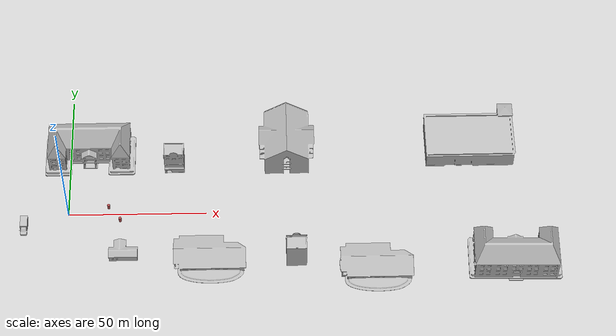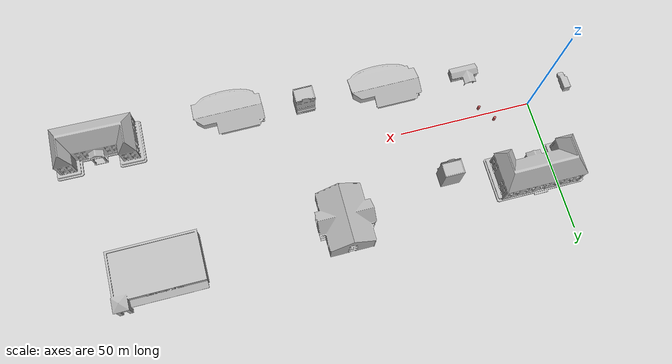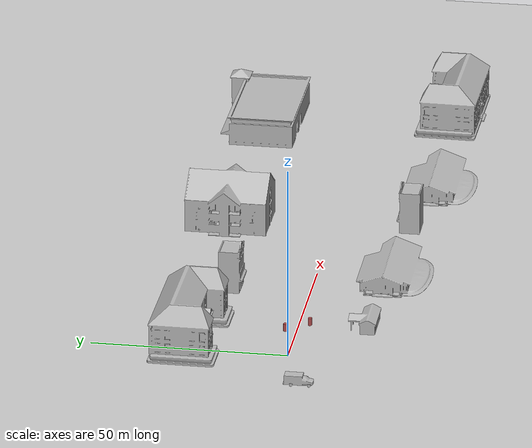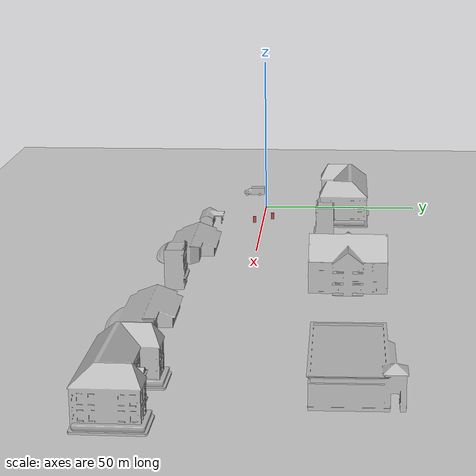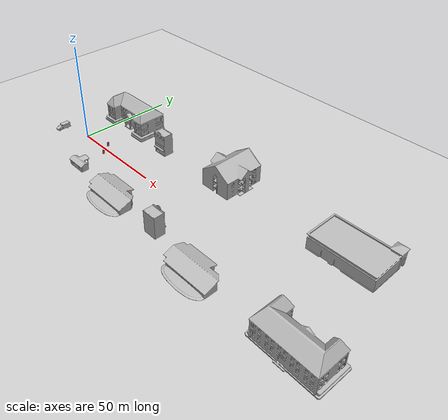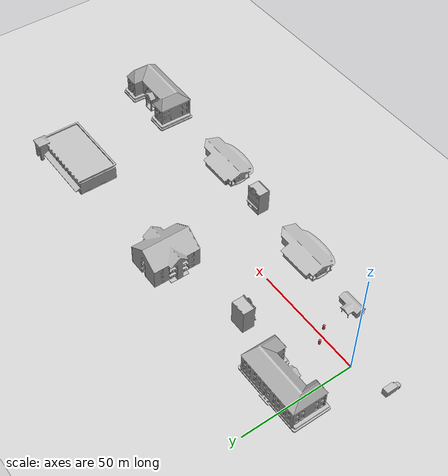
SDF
<sdf version="1.6">
 <world name="default">
  <light name="sun" type="directional">
   <pose>0 0 10 0 -0 0</pose>
   <diffuse>0.8 0.8 0.8 1</diffuse>
   <specular>0.2 0.2 0.2 1</specular>
   <attenuation>
    <range>1000</range>
    <constant>0.9</constant>
    <linear>0.01</linear>
    <quadratic>0.001</quadratic>
   </attenuation>
   <direction>-0.5 0.1 -0.9</direction>
  </light>
  <model name="ground_plane">
   <static>1</static>
   <link name="link">
    <collision name="collision">
     <geometry><plane><normal>0 0 1</normal><size>100 100</size></plane></geometry>
     <surface>
      <contact><collide_bitmask>65535</collide_bitmask></contact>
      <friction><ode><mu>100</mu><mu2>50</mu2></ode></friction>
     </surface>
    </collision>
    <visual name="visual">
     <cast_shadows>0</cast_shadows>
     <geometry><plane><normal>0 0 1</normal><size>100 100</size></plane></geometry>
     <material>
      <script><uri>file://media/materials/scripts/gazebo.material</uri><name>Gazebo/Grey</name></script>
     </material>
    </visual>
   </link>
  </model>
  <gravity>0 0 -9.8</gravity>
  <magnetic_field>6e-06 2.3e-05 -4.2e-05</magnetic_field>
  <atmosphere type="adiabatic"/>
  <physics name="default_physics" default="0" type="ode">
   <max_step_size>0.001</max_step_size>
   <real_time_factor>1</real_time_factor>
   <real_time_update_rate>1000</real_time_update_rate>
  </physics>
  <scene><ambient>0.4 0.4 0.4 1</ambient><background>0.7 0.7 0.7 1</background><shadows>1</shadows></scene>
  <spherical_coordinates>
   <surface_model>EARTH_WGS84</surface_model>
   <latitude_deg>0</latitude_deg>
   <longitude_deg>0</longitude_deg>
   <elevation>0</elevation>
   <heading_deg>0</heading_deg>
  </spherical_coordinates>
  <model name="cylinder">
   <link name="link">
    <inertial>
     <mass>1</mass>
     <inertia><ixx>0.145833</ixx><ixy>0</ixy><ixz>0</ixz><iyy>0.145833</iyy><iyz>0</iyz><izz>0.125</izz></inertia>
    </inertial>
    <visual name="visual">
     <geometry><cylinder><radius>0.5</radius><length>2</length></cylinder></geometry>
     <material>
      <script><name>Gazebo/Grey</name><uri>file://media/materials/scripts/gazebo.material</uri></script>
      <shader type="pixel"><normal_map>__default__</normal_map></shader>
      <ambient>0.7 0.3 0.3 1</ambient>
      <diffuse>0.7 0.7 0.7 1</diffuse>
      <specular>0.01 0.01 0.01 1</specular>
      <emissive>0 0 0 1</emissive>
     </material>
    </visual>
    <collision name="collision">
     <geometry><cylinder><radius>0.5</radius><length>2</length></cylinder></geometry>
     <surface>
      <friction>
       <ode><mu>1</mu><mu2>1</mu2><fdir1>0 0 0</fdir1><slip1>0</slip1><slip2>0</slip2></ode>
       <torsional>
        <coefficient>1</coefficient>
        <patch_radius>0</patch_radius>
        <surface_radius>0</surface_radius>
        <use_patch_radius>1</use_patch_radius>
        <ode><slip>0</slip></ode>
       </torsional>
      </friction>
      <bounce><restitution_coefficient>0</restitution_coefficient><threshold>1e+06</threshold></bounce>
      <contact>
       <collide_without_contact>0</collide_without_contact>
       <collide_without_contact_bitmask>1</collide_without_contact_bitmask>
       <collide_bitmask>1</collide_bitmask>
       <ode>
        <soft_cfm>0</soft_cfm>
        <soft_erp>0.2</soft_erp>
        <kp>1e+13</kp>
        <kd>1</kd>
        <max_vel>0.01</max_vel>
        <min_depth>0</min_depth>
       </ode>
       <bullet>
        <split_impulse>1</split_impulse>
        <split_impulse_penetration_threshold>-0.01</split_impulse_penetration_threshold>
        <soft_cfm>0</soft_cfm>
        <soft_erp>0.2</soft_erp>
        <kp>1e+13</kp>
        <kd>1</kd>
       </bullet>
      </contact>
     </surface>
    </collision>
   </link>
   <static>0</static>
   <pose>14.5194 2.90161 0.999991 0 0 -1e-06</pose>
  </model>
  <model name="cylinder_0">
   <link name="link">
    <inertial>
     <mass>1</mass>
     <inertia><ixx>0.145833</ixx><ixy>0</ixy><ixz>0</ixz><iyy>0.145833</iyy><iyz>0</iyz><izz>0.125</izz></inertia>
    </inertial>
    <visual name="visual">
     <geometry><cylinder><radius>0.5</radius><length>2</length></cylinder></geometry>
     <material>
      <script><name>Gazebo/Grey</name><uri>file://media/materials/scripts/gazebo.material</uri></script>
      <shader type="pixel"><normal_map>__default__</normal_map></shader>
      <ambient>0.7 0.3 0.3 1</ambient>
      <diffuse>0.7 0.7 0.7 1</diffuse>
      <specular>0.01 0.01 0.01 1</specular>
      <emissive>0 0 0 1</emissive>
     </material>
    </visual>
    <collision name="collision">
     <geometry><cylinder><radius>0.5</radius><length>2</length></cylinder></geometry>
     <surface>
      <friction>
       <ode><mu>1</mu><mu2>1</mu2><fdir1>0 0 0</fdir1><slip1>0</slip1><slip2>0</slip2></ode>
       <torsional>
        <coefficient>1</coefficient>
        <patch_radius>0</patch_radius>
        <surface_radius>0</surface_radius>
        <use_patch_radius>1</use_patch_radius>
        <ode><slip>0</slip></ode>
       </torsional>
      </friction>
      <bounce><restitution_coefficient>0</restitution_coefficient><threshold>1e+06</threshold></bounce>
      <contact>
       <collide_without_contact>0</collide_without_contact>
       <collide_without_contact_bitmask>1</collide_without_contact_bitmask>
       <collide_bitmask>1</collide_bitmask>
       <ode>
        <soft_cfm>0</soft_cfm>
        <soft_erp>0.2</soft_erp>
        <kp>1e+13</kp>
        <kd>1</kd>
        <max_vel>0.01</max_vel>
        <min_depth>0</min_depth>
       </ode>
       <bullet>
        <split_impulse>1</split_impulse>
        <split_impulse_penetration_threshold>-0.01</split_impulse_penetration_threshold>
        <soft_cfm>0</soft_cfm>
        <soft_erp>0.2</soft_erp>
        <kp>1e+13</kp>
        <kd>1</kd>
       </bullet>
      </contact>
     </surface>
    </collision>
   </link>
   <static>0</static>
   <pose>18.804 -2.73761 0.999993 0 0 -2e-06</pose>
  </model>
  <model name="post_office">
   <static>1</static>
   <link name="link">
    <collision name="collision">
     <geometry><mesh><uri>model://post_office/meshes/post_office.dae</uri></mesh></geometry>
    </collision>
    <visual name="visual">
     <geometry><mesh><uri>model://post_office/meshes/post_office.dae</uri></mesh></geometry>
    </visual>
   </link>
   <pose>20.3457 -17.8377 0 0 -0 0</pose>
  </model>
  <model name="school">
   <static>1</static>
   <link name="link">
    <collision name="collision">
     <geometry><mesh><uri>model://school/meshes/school.dae</uri></mesh></geometry>
    </collision>
    <visual name="visual"><geometry><mesh><uri>model://school/meshes/school.dae</uri></mesh></geometry></visual>
   </link>
   <pose>7.16997 28.4726 0 0 -0 0</pose>
  </model>
  <model name="salon">
   <static>1</static>
   <link name="link">
    <collision name="collision">
     <pose>0 0 5.69469 0 -0 0</pose>
     <geometry><box><size>7.21297 5.37875 11.3894</size></box></geometry>
    </collision>
    <visual name="visual">
     <pose>0 -0.903605 0 0 -0 0</pose>
     <geometry><mesh><uri>model://salon/meshes/salon.dae</uri></mesh></geometry>
    </visual>
   </link>
   <pose>38.3577 20.7042 0 0 -0 0</pose>
  </model>
  <model name="osrf_first_office">
   <static>1</static>
   <link name="link">
    <collision name="collision">
     <geometry><mesh><uri>model://osrf_first_office/meshes/osrf_first_office.dae</uri></mesh></geometry>
    </collision>
    <visual name="visual">
     <geometry><mesh><uri>model://osrf_first_office/meshes/osrf_first_office.dae</uri></mesh></geometry>
    </visual>
   </link>
   <pose>52.258 -18.5078 0 0 -0 0</pose>
  </model>
  <model name="ambulance">
   <static>1</static>
   <link name="link">
    <collision name="collision">
     <geometry>
      <mesh><scale>0.0254 0.0254 0.0254</scale><uri>model://ambulance/meshes/ambulance.obj</uri></mesh>
     </geometry>
    </collision>
    <visual name="visual">
     <geometry>
      <mesh><scale>0.0254 0.0254 0.0254</scale><uri>model://ambulance/meshes/ambulance.obj</uri></mesh>
     </geometry>
    </visual>
   </link>
   <pose>-15.896 -4.96899 0 0 -0 0</pose>
  </model>
  <model name="apartment">
   <static>1</static>
   <link name="link">
    <collision name="collision">
     <geometry><mesh><uri>model://apartment/meshes/apartment.dae</uri></mesh></geometry>
    </collision>
    <visual name="visual">
     <geometry><mesh><uri>model://apartment/meshes/apartment.dae</uri></mesh></geometry>
    </visual>
   </link>
   <pose>79.6219 27.7544 0 0 -0 0</pose>
  </model>
  <model name="grocery_store">
   <static>1</static>
   <link name="link">
    <collision name="collision">
     <pose>0 0 4.04605 0 -0 0</pose>
     <geometry><box><size>32.1985 17.5425 8.09209</size></box></geometry>
    </collision>
    <visual name="visual">
     <pose>0 -1.96155 0 0 -0 0</pose>
     <geometry><mesh><uri>model://grocery_store/meshes/grocery_store.dae</uri></mesh></geometry>
    </visual>
   </link>
   <pose>147.206 27.7938 0 0 -0 0</pose>
  </model>
  <model name="school_0">
   <static>1</static>
   <link name="link">
    <collision name="collision">
     <geometry><mesh><uri>model://school/meshes/school.dae</uri></mesh></geometry>
    </collision>
    <visual name="visual"><geometry><mesh><uri>model://school/meshes/school.dae</uri></mesh></geometry></visual>
   </link>
   <pose>160.462 -24.4501 0 0 -0 3.11992</pose>
  </model>
  <model name="salon_clone">
   <static>1</static>
   <link name="link">
    <collision name="collision">
     <pose>0 0 5.69469 0 -0 0</pose>
     <geometry><box><size>7.21297 5.37875 11.3894</size></box></geometry>
    </collision>
    <visual name="visual">
     <pose>0 -0.903605 0 0 -0 0</pose>
     <geometry><mesh><uri>model://salon/meshes/salon.dae</uri></mesh></geometry>
    </visual>
   </link>
   <pose>82.4052 -20.2524 0 0 0 -3.13925</pose>
  </model>
  <model name="osrf_first_office_0">
   <static>1</static>
   <link name="link">
    <collision name="collision">
     <geometry><mesh><uri>model://osrf_first_office/meshes/osrf_first_office.dae</uri></mesh></geometry>
    </collision>
    <visual name="visual">
     <geometry><mesh><uri>model://osrf_first_office/meshes/osrf_first_office.dae</uri></mesh></geometry>
    </visual>
   </link>
   <pose>111.877 -22.9751 0 0 -0 0</pose>
  </model>
 </world>
</sdf>
